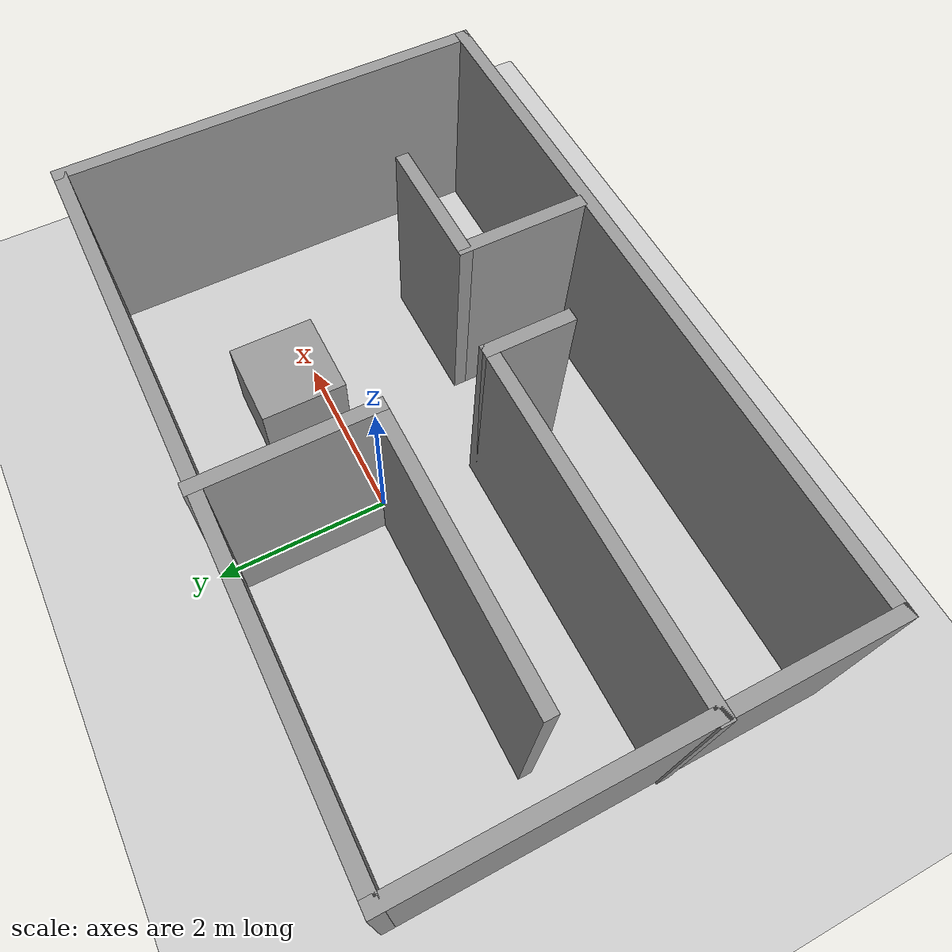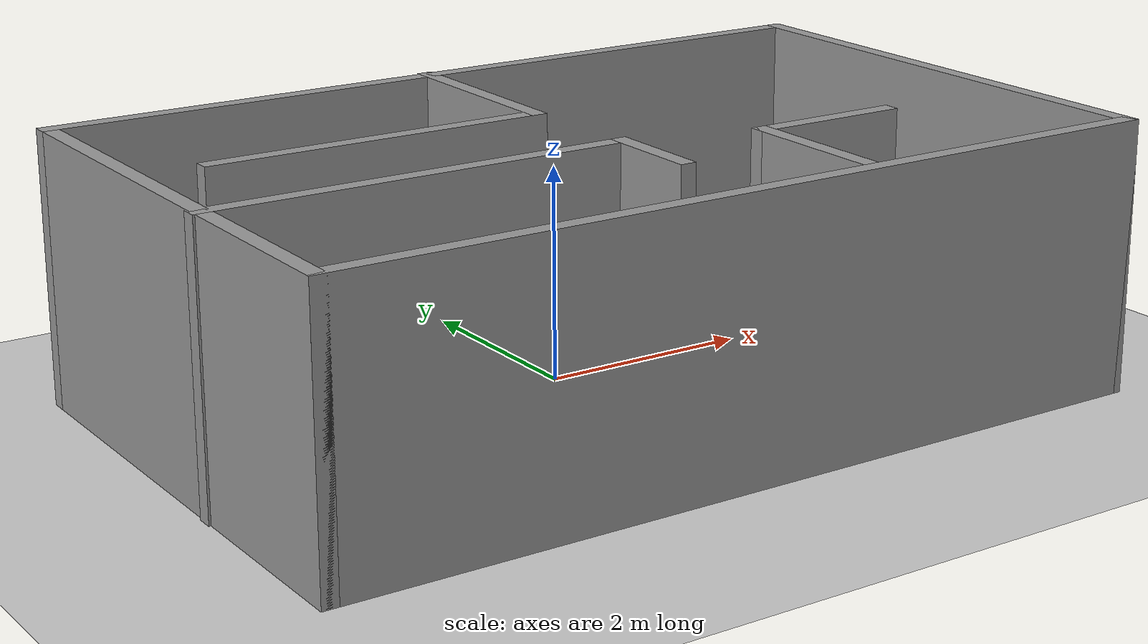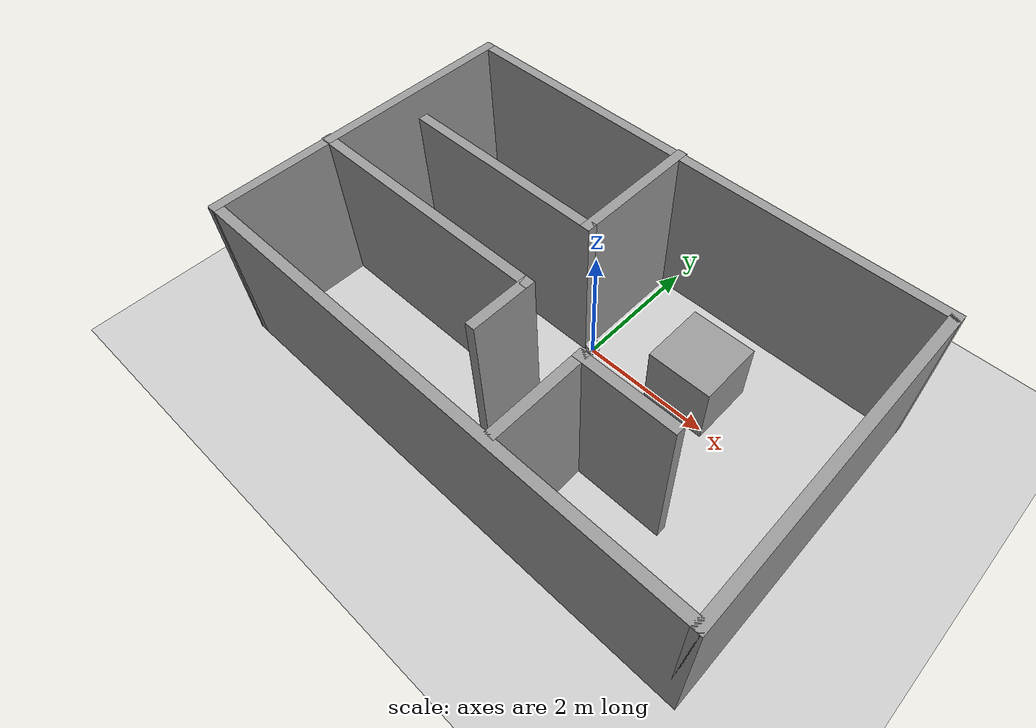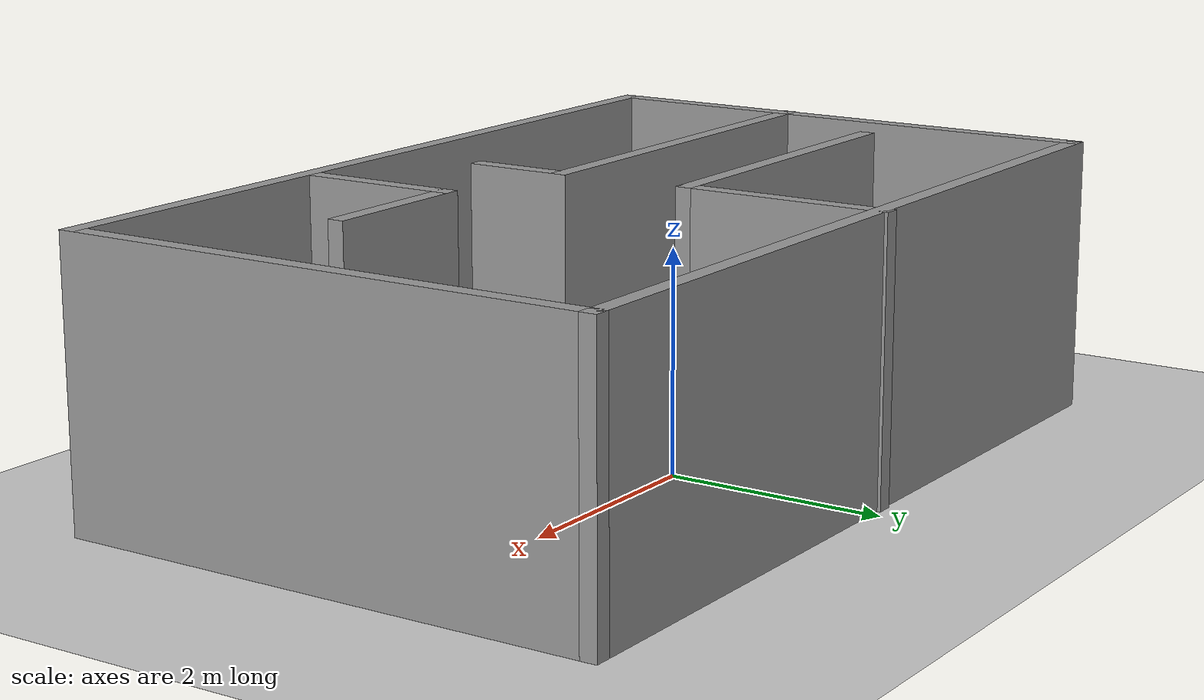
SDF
<sdf version="1.7">
 <world name="default">
  <light name="sun" type="directional">
   <pose>0 0 10 0 -0 0</pose>
   <diffuse>0.8 0.8 0.8 1</diffuse>
   <specular>0.2 0.2 0.2 1</specular>
   <attenuation>
    <range>1000</range>
    <constant>0.9</constant>
    <linear>0.01</linear>
    <quadratic>0.001</quadratic>
   </attenuation>
   <direction>-0.5 0.1 -0.9</direction>
   <spot><inner_angle>0</inner_angle><outer_angle>0</outer_angle><falloff>0</falloff></spot>
  </light>
  <model name="ground_plane">
   <static>1</static>
   <link name="link">
    <collision name="collision">
     <geometry><plane><normal>0 0 1</normal><size>100 100</size></plane></geometry>
     <surface>
      <contact><collide_bitmask>65535</collide_bitmask></contact>
      <friction><ode><mu>100</mu><mu2>50</mu2></ode></friction>
     </surface>
    </collision>
    <visual name="visual">
     <cast_shadows>0</cast_shadows>
     <geometry><plane><normal>0 0 1</normal><size>100 100</size></plane></geometry>
     <material>
      <script><uri>file://media/materials/scripts/gazebo.material</uri><name>Gazebo/Grey</name></script>
     </material>
    </visual>
   </link>
  </model>
  <gravity>0 0 -9.8</gravity>
  <magnetic_field>6e-06 2.3e-05 -4.2e-05</magnetic_field>
  <atmosphere type="adiabatic"/>
  <physics type="ode">
   <max_step_size>0.001</max_step_size>
   <real_time_factor>1</real_time_factor>
   <real_time_update_rate>1000</real_time_update_rate>
  </physics>
  <scene><ambient>0.4 0.4 0.4 1</ambient><background>0.7 0.7 0.7 1</background><shadows>1</shadows></scene>
  <audio><device>default</device></audio>
  <spherical_coordinates>
   <surface_model>EARTH_WGS84</surface_model>
   <latitude_deg>0</latitude_deg>
   <longitude_deg>0</longitude_deg>
   <elevation>0</elevation>
   <heading_deg>0</heading_deg>
  </spherical_coordinates>
  <model name="room">
   <link name="Wall_0">
    <collision name="Wall_0_Collision">
     <geometry><box><size>8 0.15 2.5</size></box></geometry>
     <pose>0 0 1.25 0 -0 0</pose>
    </collision>
    <visual name="Wall_0_Visual">
     <pose>0 0 1.25 0 -0 0</pose>
     <geometry><box><size>8 0.15 2.5</size></box></geometry>
     <material>
      <script><uri>file://media/materials/scripts/gazebo.material</uri><name>Gazebo/Grey</name></script>
      <ambient>1 1 1 1</ambient>
     </material>
     <meta><layer>0</layer></meta>
    </visual>
    <pose>0.01 1.8425 0 0 -0 3.14159</pose>
   </link>
   <link name="Wall_1">
    <collision name="Wall_1_Collision">
     <geometry><box><size>5 0.15 2.5</size></box></geometry>
     <pose>0 0 1.25 0 -0 0</pose>
    </collision>
    <visual name="Wall_1_Visual">
     <pose>0 0 1.25 0 -0 0</pose>
     <geometry><box><size>5 0.15 2.5</size></box></geometry>
     <material>
      <script><uri>file://media/materials/scripts/gazebo.material</uri><name>Gazebo/Grey</name></script>
      <ambient>1 1 1 1</ambient>
     </material>
     <meta><layer>0</layer></meta>
    </visual>
    <pose>-3.915 -0.5825 0 0 -0 -1.5708</pose>
   </link>
   <link name="Wall_10">
    <collision name="Wall_10_Collision">
     <geometry><box><size>4 0.15 2.5</size></box></geometry>
     <pose>0 0 1.25 0 -0 0</pose>
    </collision>
    <visual name="Wall_10_Visual">
     <pose>0 0 1.25 0 -0 0</pose>
     <geometry><box><size>4 0.15 2.5</size></box></geometry>
     <material>
      <script><uri>file://media/materials/scripts/gazebo.material</uri><name>Gazebo/Grey</name></script>
      <ambient>1 1 1 1</ambient>
     </material>
     <meta><layer>0</layer></meta>
    </visual>
    <pose>-2.01 -1.1875 0 0 -0 0</pose>
   </link>
   <link name="Wall_11">
    <collision name="Wall_11_Collision">
     <geometry><box><size>1 0.15 2.5</size></box></geometry>
     <pose>0 0 1.25 0 -0 0</pose>
    </collision>
    <visual name="Wall_11_Visual">
     <pose>0 0 1.25 0 -0 0</pose>
     <geometry><box><size>1 0.15 2.5</size></box></geometry>
     <material>
      <script><uri>file://media/materials/scripts/gazebo.material</uri><name>Gazebo/Grey</name></script>
      <ambient>1 1 1 1</ambient>
     </material>
     <meta><layer>0</layer></meta>
    </visual>
    <pose>-0.085 -1.6125 0 0 -0 -1.5708</pose>
   </link>
   <link name="Wall_13">
    <collision name="Wall_13_Collision">
     <geometry><box><size>1.5 0.15 2.5</size></box></geometry>
     <pose>0 0 1.25 0 -0 0</pose>
    </collision>
    <visual name="Wall_13_Visual">
     <pose>0 0 1.25 0 -0 0</pose>
     <geometry><box><size>1.5 0.15 2.5</size></box></geometry>
     <material>
      <script><uri>file://media/materials/scripts/gazebo.material</uri><name>Gazebo/Grey</name></script>
      <ambient>1 1 1 1</ambient>
     </material>
     <meta><layer>0</layer></meta>
    </visual>
    <pose>1.8 -1.5375 0 0 -0 3.14159</pose>
   </link>
   <link name="Wall_14">
    <collision name="Wall_14_Collision">
     <geometry><box><size>1.5 0.15 2.5</size></box></geometry>
     <pose>0 0 1.25 0 -0 0</pose>
    </collision>
    <visual name="Wall_14_Visual">
     <pose>0 0 1.25 0 -0 0</pose>
     <geometry><box><size>1.5 0.15 2.5</size></box></geometry>
     <material>
      <script><uri>file://media/materials/scripts/gazebo.material</uri><name>Gazebo/Grey</name></script>
      <ambient>1 1 1 1</ambient>
     </material>
     <meta><layer>0</layer></meta>
    </visual>
    <pose>1.125 -2.2125 0 0 -0 -1.5708</pose>
   </link>
   <link name="Wall_2">
    <collision name="Wall_2_Collision">
     <geometry><box><size>8 0.15 2.5</size></box></geometry>
     <pose>0 0 1.25 0 -0 0</pose>
    </collision>
    <visual name="Wall_2_Visual">
     <pose>0 0 1.25 0 -0 0</pose>
     <geometry><box><size>8 0.15 2.5</size></box></geometry>
     <material>
      <script><uri>file://media/materials/scripts/gazebo.material</uri><name>Gazebo/Grey</name></script>
      <ambient>1 1 1 1</ambient>
     </material>
     <meta><layer>0</layer></meta>
    </visual>
    <pose>0.01 -3.0075 0 0 -0 0</pose>
   </link>
   <link name="Wall_3">
    <collision name="Wall_3_Collision">
     <geometry><box><size>5 0.15 2.5</size></box></geometry>
     <pose>0 0 1.25 0 -0 0</pose>
    </collision>
    <visual name="Wall_3_Visual">
     <pose>0 0 1.25 0 -0 0</pose>
     <geometry><box><size>5 0.15 2.5</size></box></geometry>
     <material>
      <script><uri>file://media/materials/scripts/gazebo.material</uri><name>Gazebo/Grey</name></script>
      <ambient>1 1 1 1</ambient>
     </material>
     <meta><layer>0</layer></meta>
    </visual>
    <pose>3.935 -0.5825 0 0 -0 1.5708</pose>
   </link>
   <link name="Wall_7">
    <collision name="Wall_7_Collision">
     <geometry><box><size>2 0.15 2.5</size></box></geometry>
     <pose>0 0 1.25 0 -0 0</pose>
    </collision>
    <visual name="Wall_7_Visual">
     <pose>0 0 1.25 0 -0 0</pose>
     <geometry><box><size>2 0.15 2.5</size></box></geometry>
     <material>
      <script><uri>file://media/materials/scripts/gazebo.material</uri><name>Gazebo/Grey</name></script>
      <ambient>1 1 1 1</ambient>
     </material>
     <meta><layer>0</layer></meta>
    </visual>
    <pose>-0.175 0.9475 0 0 -0 -1.5708</pose>
   </link>
   <link name="Wall_8">
    <collision name="Wall_8_Collision">
     <geometry><box><size>3.25 0.15 2.5</size></box></geometry>
     <pose>0 0 1.25 0 -0 0</pose>
    </collision>
    <visual name="Wall_8_Visual">
     <pose>0 0 1.25 0 -0 0</pose>
     <geometry><box><size>3.25 0.15 2.5</size></box></geometry>
     <material>
      <script><uri>file://media/materials/scripts/gazebo.material</uri><name>Gazebo/Grey</name></script>
      <ambient>1 1 1 1</ambient>
     </material>
     <meta><layer>0</layer></meta>
    </visual>
    <pose>-1.725 0.0225 0 0 -0 3.14159</pose>
   </link>
   <static>1</static>
  </model>
  <model name="fishbot">
   <link name="base_footprint">
    <inertial>
     <pose>0.007143 0 0.105929 0 -0 0</pose>
     <mass>1.4</mass>
     <inertia>
      <ixx>0.00745458</ixx>
      <ixy>0</ixy>
      <ixz>-0.000600714</ixz>
      <iyy>0.00894315</iyy>
      <iyz>0</iyz>
      <izz>0.00669131</izz>
     </inertia>
    </inertial>
    <collision name="base_footprint_fixed_joint_lump__base_link_collision">
     <pose>0 0 0.091 0 -0 0</pose>
     <geometry><cylinder><length>0.12</length><radius>0.1</radius></cylinder></geometry>
    </collision>
    <collision name="base_footprint_fixed_joint_lump__back_caster_link_collision_1">
     <pose>-0.08 0 0.015 0 -0 0</pose>
     <geometry><sphere><radius>0.016</radius></sphere></geometry>
     <surface>
      <contact><ode><kp>1e+09</kp><kd>1</kd></ode></contact>
      <friction><ode><mu>0</mu><mu2>0</mu2></ode></friction>
     </surface>
    </collision>
    <collision name="base_footprint_fixed_joint_lump__camera_link_collision_2">
     <pose>0.1 0 0.166 0 -0 0</pose>
     <geometry><box><size>0.02 0.1 0.02</size></box></geometry>
    </collision>
    <collision name="base_footprint_fixed_joint_lump__front_caster_link_collision_3">
     <pose>0.08 0 0.015 0 -0 0</pose>
     <geometry><sphere><radius>0.016</radius></sphere></geometry>
     <surface>
      <contact><ode><kp>1e+09</kp><kd>1</kd></ode></contact>
      <friction><ode><mu>0</mu><mu2>0</mu2></ode></friction>
     </surface>
    </collision>
    <collision name="base_footprint_fixed_joint_lump__imu_link_collision_4">
     <pose>0 0 0.111 0 -0 0</pose>
     <geometry><box><size>0.02 0.02 0.02</size></box></geometry>
    </collision>
    <collision name="base_footprint_fixed_joint_lump__laser_cylinder_link_collision_5">
     <pose>0 0 0.191 0 -0 0</pose>
     <geometry><cylinder><length>0.1</length><radius>0.01</radius></cylinder></geometry>
    </collision>
    <collision name="base_footprint_fixed_joint_lump__laser_link_collision_6">
     <pose>0 0 0.241 0 -0 0</pose>
     <geometry><cylinder><length>0.02</length><radius>0.02</radius></cylinder></geometry>
    </collision>
    <visual name="base_footprint_fixed_joint_lump__base_link_visual">
     <pose>0 0 0.091 0 -0 0</pose>
     <geometry><cylinder><length>0.12</length><radius>0.1</radius></cylinder></geometry>
    </visual>
    <visual name="base_footprint_fixed_joint_lump__back_caster_link_visual_1">
     <pose>-0.08 0 0.015 0 -0 0</pose>
     <geometry><sphere><radius>0.016</radius></sphere></geometry>
    </visual>
    <visual name="base_footprint_fixed_joint_lump__camera_link_visual_2">
     <pose>0.1 0 0.166 0 -0 0</pose>
     <geometry><box><size>0.02 0.1 0.02</size></box></geometry>
    </visual>
    <visual name="base_footprint_fixed_joint_lump__front_caster_link_visual_3">
     <pose>0.08 0 0.015 0 -0 0</pose>
     <geometry><sphere><radius>0.016</radius></sphere></geometry>
    </visual>
    <visual name="base_footprint_fixed_joint_lump__imu_link_visual_4">
     <pose>0 0 0.111 0 -0 0</pose>
     <geometry><box><size>0.02 0.02 0.02</size></box></geometry>
    </visual>
    <visual name="base_footprint_fixed_joint_lump__laser_cylinder_link_visual_5">
     <pose>0 0 0.191 0 -0 0</pose>
     <geometry><cylinder><length>0.1</length><radius>0.01</radius></cylinder></geometry>
     <material>
      <script><name>Gazebo/Black</name><uri>file://media/materials/scripts/gazebo.material</uri></script>
     </material>
    </visual>
    <visual name="base_footprint_fixed_joint_lump__laser_link_visual_6">
     <pose>0 0 0.241 0 -0 0</pose>
     <geometry><cylinder><length>0.02</length><radius>0.02</radius></cylinder></geometry>
     <material>
      <script><name>Gazebo/Black</name><uri>file://media/materials/scripts/gazebo.material</uri></script>
     </material>
    </visual>
    <sensor name="camera_sensor" type="depth">
     <plugin name="depth_camera" filename="libgazebo_ros_camera.so">
      <frame_name>camera_optical_link</frame_name>
     </plugin>
     <always_on>1</always_on>
     <update_rate>10</update_rate>
     <camera name="camera">
      <horizontal_fov>1.50098</horizontal_fov>
      <image><width>800</width><height>600</height><format>R8G8B8</format></image>
      <distortion><k1>0</k1><k2>0</k2><k3>0</k3><p1>0</p1><p2>0</p2><center>0.5 0.5</center></distortion>
      <clip><near>0.1</near><far>100</far></clip>
     </camera>
     <pose>0.1 0 0.166 0 -0 0</pose>
    </sensor>
    <sensor name="imu_sensor" type="imu">
     <plugin name="imu_plugin" filename="libgazebo_ros_imu_sensor.so">
      <ros><namespace>/</namespace><remapping>~/out:=imu</remapping></ros>
      <initial_orientation_as_reference>0</initial_orientation_as_reference>
     </plugin>
     <update_rate>100</update_rate>
     <always_on>1</always_on>
     <imu>
      <angular_velocity>
       <x>
        <noise type="gaussian">
         <mean>0</mean>
         <stddev>0.0002</stddev>
         <bias_mean>7.5e-06</bias_mean>
         <bias_stddev>8e-07</bias_stddev>
        </noise>
       </x>
       <y>
        <noise type="gaussian">
         <mean>0</mean>
         <stddev>0.0002</stddev>
         <bias_mean>7.5e-06</bias_mean>
         <bias_stddev>8e-07</bias_stddev>
        </noise>
       </y>
       <z>
        <noise type="gaussian">
         <mean>0</mean>
         <stddev>0.0002</stddev>
         <bias_mean>7.5e-06</bias_mean>
         <bias_stddev>8e-07</bias_stddev>
        </noise>
       </z>
      </angular_velocity>
      <linear_acceleration>
       <x>
        <noise type="gaussian">
         <mean>0</mean>
         <stddev>0.017</stddev>
         <bias_mean>0.1</bias_mean>
         <bias_stddev>0.001</bias_stddev>
        </noise>
       </x>
       <y>
        <noise type="gaussian">
         <mean>0</mean>
         <stddev>0.017</stddev>
         <bias_mean>0.1</bias_mean>
         <bias_stddev>0.001</bias_stddev>
        </noise>
       </y>
       <z>
        <noise type="gaussian">
         <mean>0</mean>
         <stddev>0.017</stddev>
         <bias_mean>0.1</bias_mean>
         <bias_stddev>0.001</bias_stddev>
        </noise>
       </z>
      </linear_acceleration>
     </imu>
     <pose>0 0 0.111 0 -0 0</pose>
    </sensor>
    <sensor name="laserscan" type="ray">
     <plugin name="laserscan" filename="libgazebo_ros_ray_sensor.so">
      <ros><namespace>/</namespace><remapping>~/out:=scan</remapping></ros>
      <output_type>sensor_msgs/LaserScan</output_type>
      <frame_name>laser_link</frame_name>
     </plugin>
     <always_on>1</always_on>
     <visualize>1</visualize>
     <update_rate>5</update_rate>
     <ray>
      <scan>
       <horizontal>
        <samples>360</samples>
        <resolution>1</resolution>
        <min_angle>0</min_angle>
        <max_angle>6.28</max_angle>
       </horizontal>
       <vertical><samples>1</samples><min_angle>0</min_angle><max_angle>0</max_angle></vertical>
      </scan>
      <range><min>0.12</min><max>8</max><resolution>0.015</resolution></range>
      <noise><type>gaussian</type><mean>0</mean><stddev>0.01</stddev></noise>
     </ray>
     <pose>0 0 0.241 0 -0 0</pose>
    </sensor>
   </link>
   <joint name="left_wheel_joint" type="revolute">
    <pose relative_to="base_footprint">0 0.1 0.031 0 -0 0</pose>
    <parent>base_footprint</parent>
    <child>left_wheel_link</child>
    <axis>
     <xyz>0 1 0</xyz>
     <limit><lower>-1e+16</lower><upper>1e+16</upper></limit>
     <dynamics><spring_reference>0</spring_reference><spring_stiffness>0</spring_stiffness></dynamics>
    </axis>
   </joint>
   <link name="left_wheel_link">
    <pose relative_to="left_wheel_joint">0 0 0 0 -0 0</pose>
    <inertial>
     <mass>0.05</mass>
     <inertia>
      <ixx>1.94667e-05</ixx>
      <ixy>0</ixy>
      <ixz>0</ixz>
      <iyy>1.94667e-05</iyy>
      <iyz>0</iyz>
      <izz>2.56e-05</izz>
     </inertia>
    </inertial>
    <collision name="left_wheel_link_collision">
     <pose>0 0 0 1.57079 -0 0</pose>
     <geometry><cylinder><length>0.04</length><radius>0.032</radius></cylinder></geometry>
     <surface>
      <contact><ode><kp>1e+09</kp><kd>1</kd></ode></contact>
      <friction><ode><mu>20</mu><mu2>20</mu2></ode></friction>
     </surface>
    </collision>
    <visual name="left_wheel_link_visual">
     <pose>0 0 0 1.57079 -0 0</pose>
     <geometry><cylinder><length>0.04</length><radius>0.032</radius></cylinder></geometry>
    </visual>
   </link>
   <joint name="right_wheel_joint" type="revolute">
    <pose relative_to="base_footprint">0 -0.1 0.031 0 -0 0</pose>
    <parent>base_footprint</parent>
    <child>right_wheel_link</child>
    <axis>
     <xyz>0 1 0</xyz>
     <limit><lower>-1e+16</lower><upper>1e+16</upper></limit>
     <dynamics><spring_reference>0</spring_reference><spring_stiffness>0</spring_stiffness></dynamics>
    </axis>
   </joint>
   <link name="right_wheel_link">
    <pose relative_to="right_wheel_joint">0 0 0 0 -0 0</pose>
    <inertial>
     <mass>0.05</mass>
     <inertia>
      <ixx>1.94667e-05</ixx>
      <ixy>0</ixy>
      <ixz>0</ixz>
      <iyy>1.94667e-05</iyy>
      <iyz>0</iyz>
      <izz>2.56e-05</izz>
     </inertia>
    </inertial>
    <collision name="right_wheel_link_collision">
     <pose>0 0 0 1.57079 -0 0</pose>
     <geometry><cylinder><length>0.04</length><radius>0.032</radius></cylinder></geometry>
     <surface>
      <contact><ode><kp>1e+09</kp><kd>1</kd></ode></contact>
      <friction><ode><mu>20</mu><mu2>20</mu2></ode></friction>
     </surface>
    </collision>
    <visual name="right_wheel_link_visual">
     <pose>0 0 0 1.57079 -0 0</pose>
     <geometry><cylinder><length>0.04</length><radius>0.032</radius></cylinder></geometry>
    </visual>
   </link>
   <static>0</static>
   <plugin name="gazebo_ros2_control" filename="libgazebo_ros2_control.so">
    <parameters>/home/robot007/ros_ws/install/mybot_description/share/mybot_description/config/fishbot_ros2_controller.yaml</parameters>
    <ros>
     <remapping>/fishbot_diff_drive_controller/cmd_vel_unstamped:=/cmd_vel</remapping>
     <remapping>/fishbot_diff_drive_controller/odom:=/odom</remapping>
    </ros>
   </plugin>
   <pose>1.3e-05 -4e-06 0.001 0 0 -4.9e-05</pose>
  </model>
  <model name="unit_box">
   <pose>1.56339 0.414202 0.499995 -1e-05 -0 -0</pose>
   <link name="link">
    <inertial>
     <mass>1</mass>
     <inertia>
      <ixx>0.166667</ixx>
      <ixy>0</ixy>
      <ixz>0</ixz>
      <iyy>0.166667</iyy>
      <iyz>0</iyz>
      <izz>0.166667</izz>
     </inertia>
    </inertial>
    <collision name="collision"><geometry><box><size>1 1 1</size></box></geometry></collision>
    <visual name="visual">
     <geometry><box><size>1 1 1</size></box></geometry>
     <material>
      <script><name>Gazebo/Grey</name><uri>file://media/materials/scripts/gazebo.material</uri></script>
     </material>
    </visual>
   </link>
  </model>
 </world>
</sdf>
